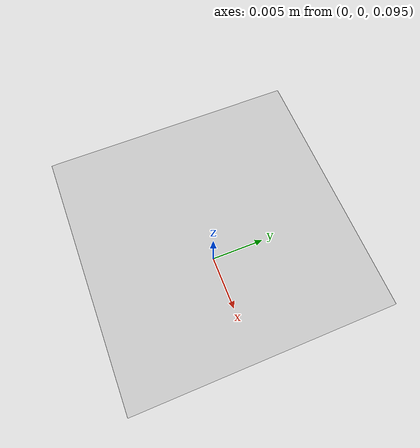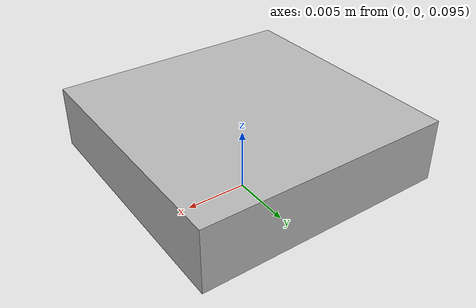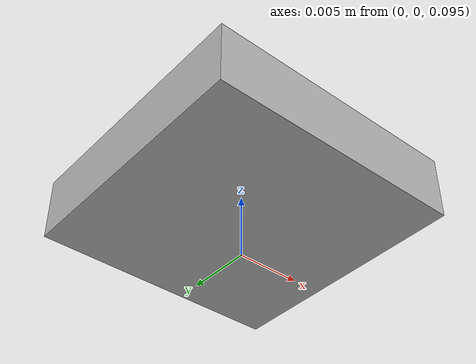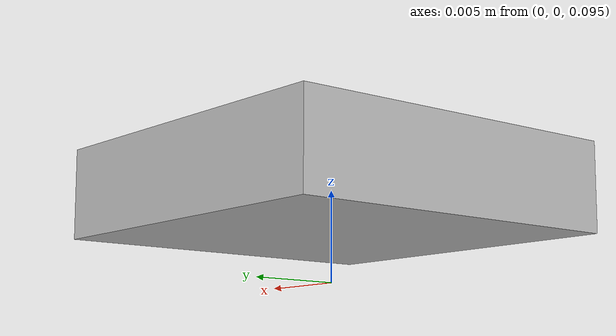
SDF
<?xml version="1.0"?>
<sdf version="1.6">
  <model name="tactile_sensor">
    <pose>0 0 0.1 0 0 0</pose>
    <static>false</static>

    <link name="tactile_link">
      <inertial>
        <mass>0.01</mass>
        <inertia>
          <ixx>1e-6</ixx>
          <iyy>1e-6</iyy>
          <izz>1e-6</izz>
        </inertia>
      </inertial>

      <collision name="tactile_collision">
        <geometry>
          <box><size>0.02 0.02 0.005</size></box>
        </geometry>
      </collision>

      <visual name="visual">
        <geometry>
          <box><size>0.02 0.02 0.005</size></box>
        </geometry>
      </visual>

      <sensor name="tactile_bumper" type="contact">
        <always_on>1</always_on>
        <update_rate>50.0</update_rate>
        <contact>
          <collision>tactile_collision</collision>
        </contact>
        <plugin name="tactile_bumper_plugin" filename="libgazebo_ros_bumper.so">
          <!-- This adds the namespace prefix to all topics -->
          <robotNamespace>/tactile_sensor</robotNamespace>
          <!-- Topic name without leading slash - will become /tactile_sensor/bumper_states -->
          <topicName>bumper_states</topicName>
          <frameName>tactile_link</frameName>
        </plugin>
      </sensor>
    </link>
  </model>
</sdf>
